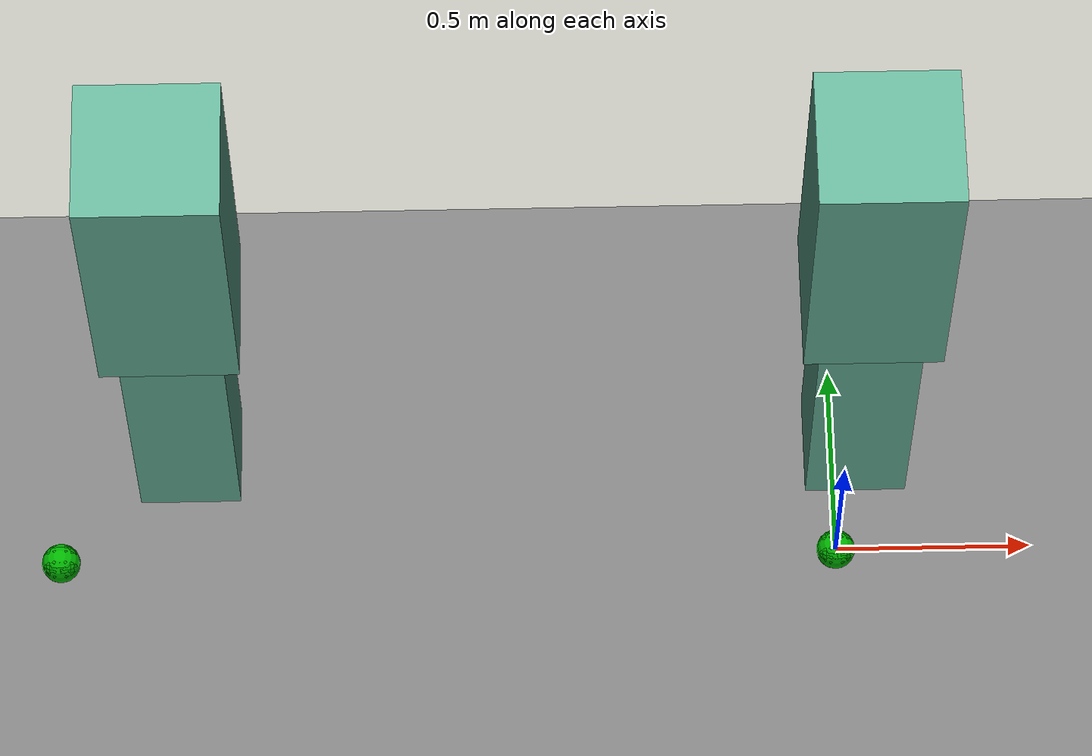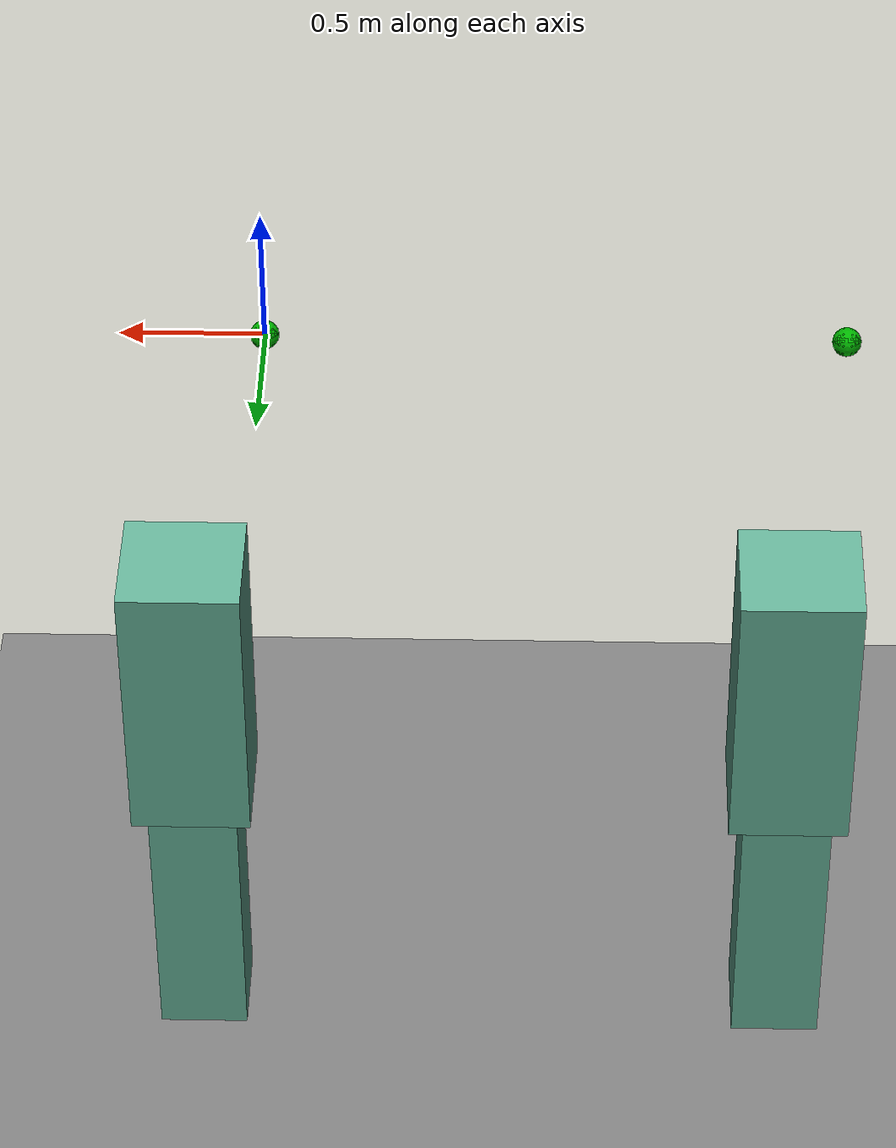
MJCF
<mujoco model="equality_connect_vs_weld">
  <option viscosity="1">
    <flag contact="disable"/>
  </option>

  <default>
    <default class="box">
      <geom type="box" size=".2" fromto=".2 .2 0 .2 .2 -1" rgba=".4 .7 .6 1"/>
    </default>
    <site rgba=".0 .7 0 1" size="0.05"/>
  </default>

  <worldbody>
    <geom pos="0 0 -2" type="plane" size="10 10 .01"/>
    <site name="a1" pos="-2 0 0" euler="-90 0 0"/>
    <body name="a" pos="-2 1 0">
      <freejoint/>
      <geom class="box"/>
      <site name="a2" pos="0 -1 0"/>
      <body pos="0 0 -1">
        <geom class="box" size=".15"/>
      </body>
    </body>

    <site name="b1" euler="-90 0 0"/>
    <body name="b" pos="0 1 0">
      <freejoint/>
      <geom class="box"/>
      <site name="b2" pos="0 -1 0"/>
      <body pos="0 0 -1">
        <geom class="box" size=".15"/>
      </body>
    </body>
  </worldbody>

  <equality>
    <!-- equivalent connect and weld constraints defined with sites (enabled) and bodies (disabled) -->
    <connect name="connect_site" site1="a1"    site2="a2"    active="true"/>
    <connect name="connect_body" body1="a"                   active="false" anchor="0 -1 0"/>
    <weld    name="weld_site"    site1="b1"    site2="b2"    active="true"/>
    <weld    name="weld_body"    body1="b"                   active="false" anchor="0 0 0" relpose="0 -1 0 0.70710678 0.70710678 0 0"/>
  </equality>
</mujoco>
